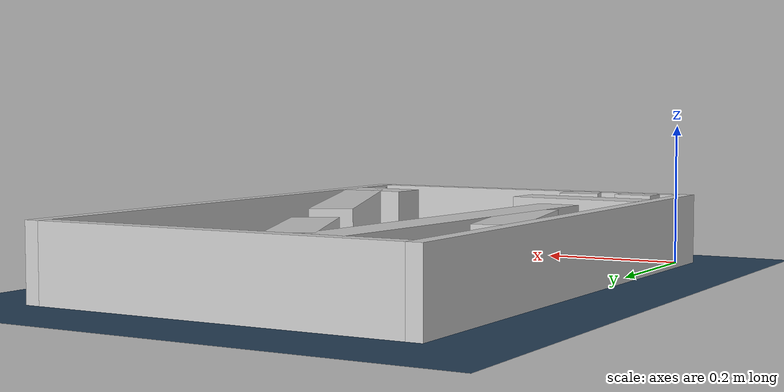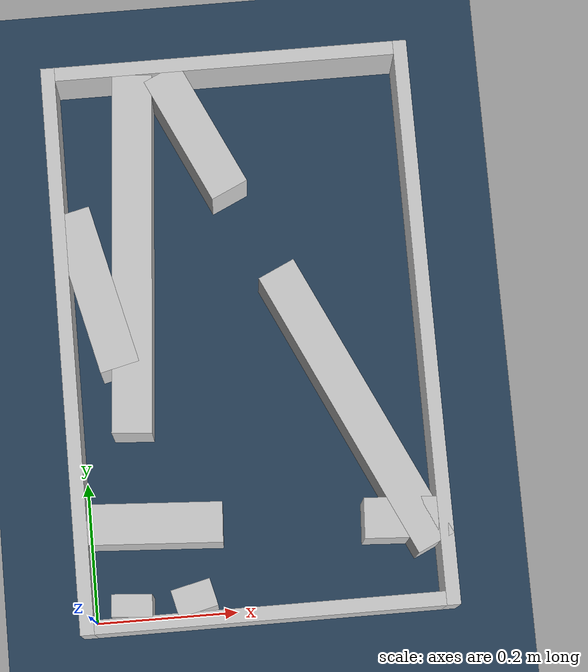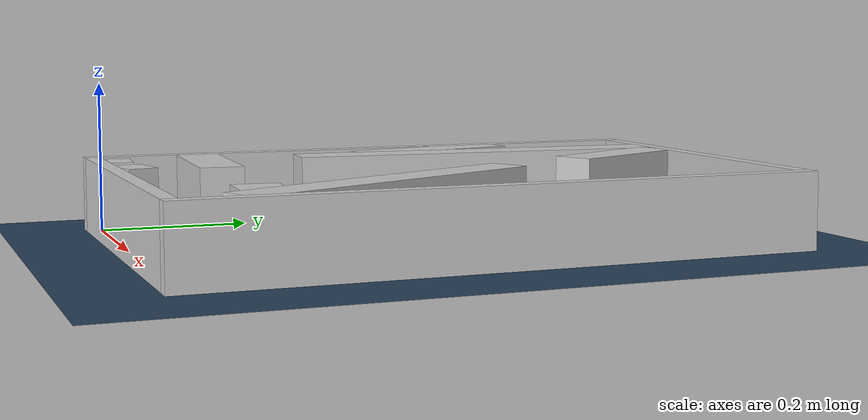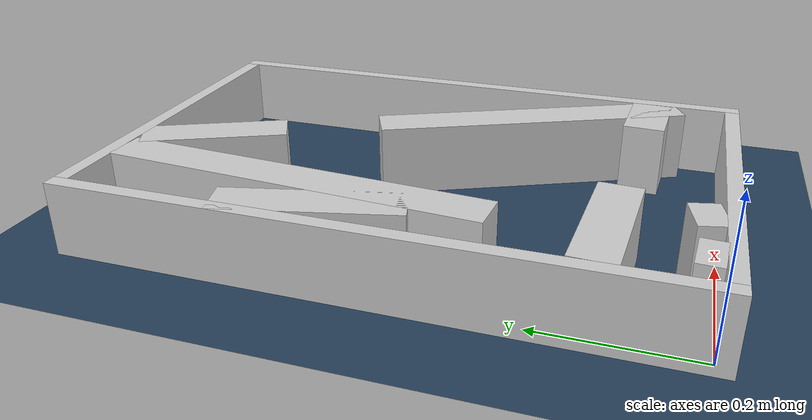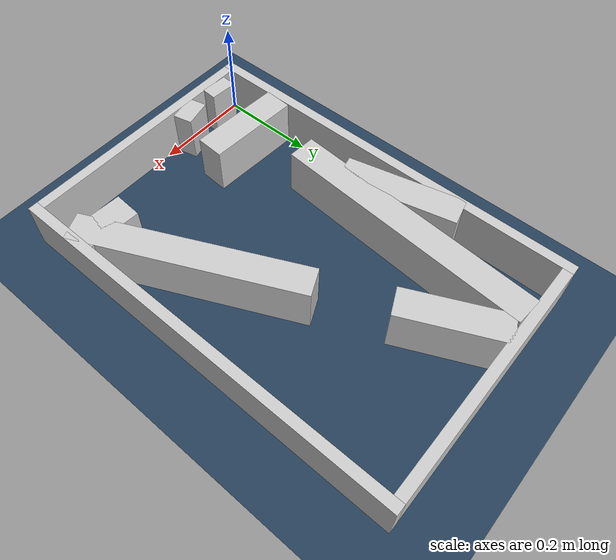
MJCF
<?xml version="1.0" ?>
<mujoco model="generated_real_template">
  <compiler angle="degree"/>
  <option timestep="0.002" integrator="implicitfast" iterations="100" cone="elliptic"/>
  <default>
    <geom density="1"/>
  </default>
  <asset>
    <texture builtin="gradient" height="3072" rgb1="0.3 0.5 0.7" rgb2="0 0 0" type="skybox" width="512"/>
    <texture builtin="checker" height="300" mark="edge" markrgb="0.8 0.8 0.8" name="groundplane" rgb1="0.2 0.3 0.4" rgb2="0.1 0.2 0.3" type="2d" width="300"/>
    <material name="groundplane" reflectance="0.2" texrepeat="5 5" texture="groundplane" texuniform="true"/>
  </asset>
  <worldbody>
    <light dir="0 0 -1" directional="true" pos="0 0 1.5"/>
    <geom name="floor" type="plane" condim="4" friction="0.5 0.005 0.001" material="groundplane" size="0 0 0.05"/>
    <body name="walls">
      <geom name="wall_boundary_left" type="box" condim="4" friction="1.0 0.005 0.0001" rgba="0.8 0.8 0.8 1" pos="-0.010000 0.387500 0.050000" euler="0 0 0.000000" size="0.010000 0.407500 0.050000"/>
      <geom name="wall_boundary_right" type="box" condim="4" friction="1.0 0.005 0.0001" rgba="0.8 0.8 0.8 1" pos="0.500000 0.387500 0.050000" euler="0 0 0.000000" size="0.010000 0.407500 0.050000"/>
      <geom name="wall_boundary_bottom" type="box" condim="4" friction="1.0 0.005 0.0001" rgba="0.8 0.8 0.8 1" pos="0.245000 -0.010000 0.050000" euler="0 0 0.000000" size="0.245000 0.010000 0.050000"/>
      <geom name="wall_boundary_top" type="box" condim="4" friction="1.0 0.005 0.0001" rgba="0.8 0.8 0.8 1" pos="0.245000 0.785000 0.050000" euler="0 0 0.000000" size="0.245000 0.010000 0.050000"/>
      <geom name="wall_inner_1_1" type="box" condim="4" friction="1.0 0.005 0.0001" rgba="0.8 0.8 0.8 1" pos="0.141900 0.019196 0.050000" euler="0 0 103.460852" size="0.019738 0.028500 0.050000"/>
      <geom name="wall_inner_1_2" type="box" condim="4" friction="1.0 0.005 0.0001" rgba="0.8 0.8 0.8 1" pos="0.035048 0.465610 0.050000" euler="0 0 103.460852" size="0.117407 0.028500 0.050000"/>
      <geom name="wall_inner_2_1" type="box" condim="4" friction="1.0 0.005 0.0001" rgba="0.8 0.8 0.8 1" pos="0.195441 0.684698 0.050000" euler="0 0 -64.926643" size="0.099697 0.028500 0.050000"/>
      <geom name="wall_inner_2_2" type="box" condim="4" friction="1.0 0.005 0.0001" rgba="0.8 0.8 0.8 1" pos="0.389114 0.270749 0.050000" euler="0 0 -64.926643" size="0.224340 0.028500 0.050000"/>
      <geom name="wall_inner_3_1" type="box" condim="4" friction="1.0 0.005 0.0001" rgba="0.8 0.8 0.8 1" pos="0.091717 0.515604 0.050000" euler="0 0 -94.261801" size="0.260116 0.028500 0.050000"/>
      <geom name="wall_inner_3_2" type="box" condim="4" friction="1.0 0.005 0.0001" rgba="0.8 0.8 0.8 1" pos="0.054470 0.015781 0.050000" euler="0 0 -94.261801" size="0.015825 0.028500 0.050000"/>
      <geom name="wall_inner_4_1" type="box" condim="4" friction="1.0 0.005 0.0001" rgba="0.8 0.8 0.8 1" pos="0.094792 0.127086 0.050000" euler="0 0 -3.315521" size="0.094950 0.028500 0.050000"/>
      <geom name="wall_inner_4_2" type="box" condim="4" friction="1.0 0.005 0.0001" rgba="0.8 0.8 0.8 1" pos="0.438360 0.107183 0.050000" euler="0 0 -3.315521" size="0.051726 0.028500 0.050000"/>
    </body>
  </worldbody>
</mujoco>
